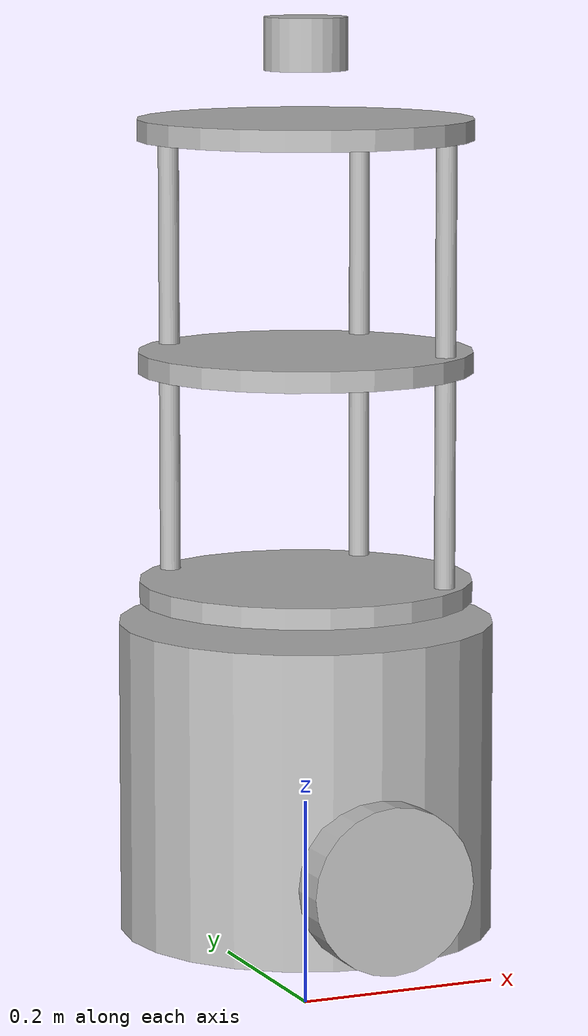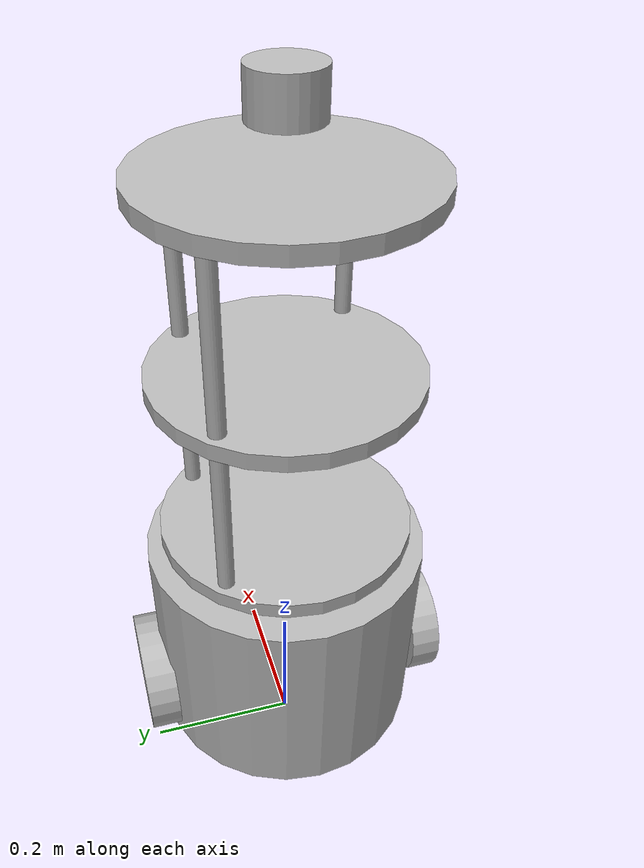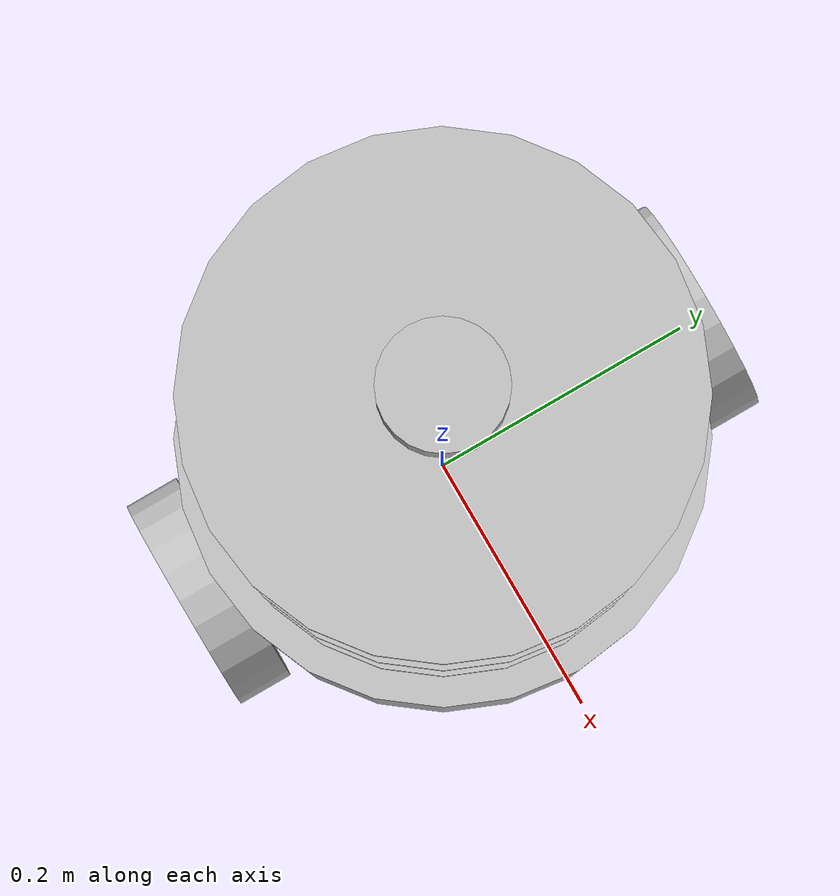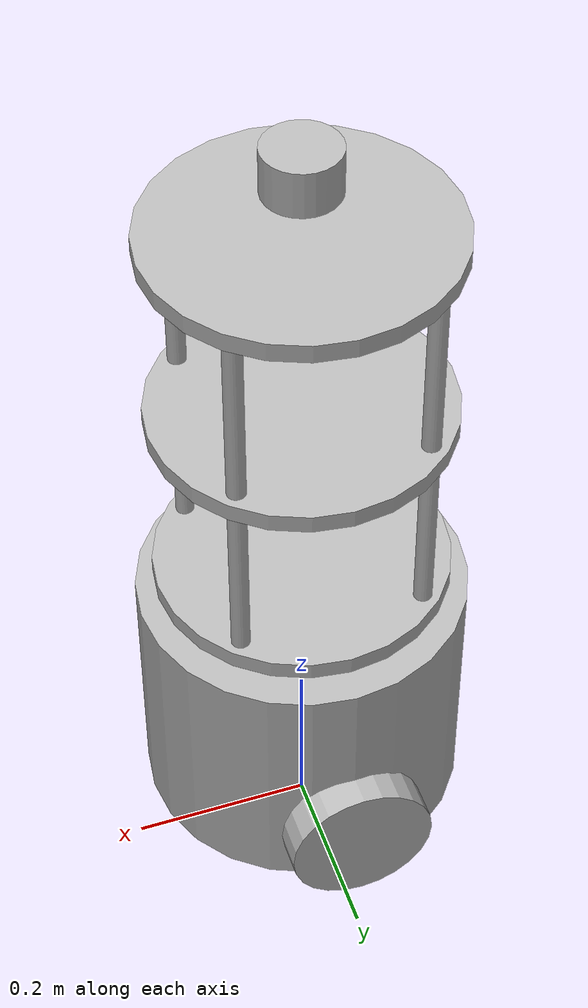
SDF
<sdf version='1.7'>
  <model name='restaurant_service_robot'>
  <plugin
  filename="gz-sim-diff-drive-system"
  name="gz::sim::systems::DiffDrive">

  <left_joint>left_wheel_joint</left_joint>
  <right_joint>right_wheel_joint</right_joint>

  <wheel_separation>0.38</wheel_separation>
  <wheel_radius>0.08</wheel_radius>

  <topic>cmd_vel</topic>

  <odom_topic>odom</odom_topic>

</plugin>
    <link name='base_footprint'>
      <inertial>
        <pose>-0.002927 0 0.226829 0 -0 0</pose>
        <mass>12.3</mass>
        <inertia>
          <ixx>0.255046</ixx>
          <ixy>0</ixy>
          <ixz>-0.00456585</ixz>
          <iyy>0.259261</iyy>
          <iyz>0</iyz>
          <izz>0.304315</izz>
        </inertia>
      </inertial>
      <collision name='base_footprint_fixed_joint_lump__base_link_collision'>
        <pose>0 0 0.23 0 -0 0</pose>
        <geometry>
          <cylinder>
            <length>0.3</length>
            <radius>0.18</radius>
          </cylinder>
        </geometry>
      </collision>
      <collision name='base_footprint_fixed_joint_lump__caster_wheel_collision_1'>
        <pose>-0.12 0 0.1 0 -0 0</pose>
        <geometry>
          <sphere>
            <radius>0.04</radius>
          </sphere>
        </geometry>
      </collision>
      <collision name='base_footprint_fixed_joint_lump__lower_tray_collision_2'>
        <pose>0 0 0.41 0 -0 0</pose>
        <geometry>
          <cylinder>
            <length>0.02</length>
            <radius>0.16</radius>
          </cylinder>
        </geometry>
      </collision>
      <collision name='base_footprint_fixed_joint_lump__middle_tray_collision_3'>
        <pose>0 0 0.63 0 -0 0</pose>
        <geometry>
          <cylinder>
            <length>0.02</length>
            <radius>0.16</radius>
          </cylinder>
        </geometry>
      </collision>
      <collision name='base_footprint_fixed_joint_lump__top_tray_collision_4'>
        <pose>0 0 0.85 0 -0 0</pose>
        <geometry>
          <cylinder>
            <length>0.02</length>
            <radius>0.16</radius>
          </cylinder>
        </geometry>
      </collision>
      <visual name='base_footprint_fixed_joint_lump__base_link_visual'>
        <pose>0 0 0.23 0 -0 0</pose>
        <geometry>
          <cylinder>
            <length>0.3</length>
            <radius>0.18</radius>
          </cylinder>
        </geometry>
      </visual>
      <visual name='base_footprint_fixed_joint_lump__caster_wheel_visual_1'>
        <pose>-0.12 0 0.1 0 -0 0</pose>
        <geometry>
          <sphere>
            <radius>0.04</radius>
          </sphere>
        </geometry>
      </visual>
      <visual name='base_footprint_fixed_joint_lump__lower_tray_visual_2'>
        <pose>0 0 0.41 0 -0 0</pose>
        <geometry>
          <cylinder>
            <length>0.02</length>
            <radius>0.16</radius>
          </cylinder>
        </geometry>
      </visual>
      <visual name='base_footprint_fixed_joint_lump__middle_tray_visual_3'>
        <pose>0 0 0.63 0 -0 0</pose>
        <geometry>
          <cylinder>
            <length>0.02</length>
            <radius>0.16</radius>
          </cylinder>
        </geometry>
      </visual>
      <visual name='base_footprint_fixed_joint_lump__top_tray_visual_4'>
        <pose>0 0 0.85 0 -0 0</pose>
        <geometry>
          <cylinder>
            <length>0.02</length>
            <radius>0.16</radius>
          </cylinder>
        </geometry>
      </visual>
      <visual name='base_footprint_fixed_joint_lump__lidar_link_visual_5'>
        <pose>0 0 0.93 0 -0 0</pose>
        <geometry>
          <cylinder>
            <length>0.05</length>
            <radius>0.04</radius>
          </cylinder>
        </geometry>
      </visual>
      <visual name='base_footprint_fixed_joint_lump__rod_1_visual_6'>
        <pose>0.1 0.1 0.62 0 -0 0</pose>
        <geometry>
          <cylinder>
            <length>0.44</length>
            <radius>0.01</radius>
          </cylinder>
        </geometry>
      </visual>
      <visual name='base_footprint_fixed_joint_lump__rod_2_visual_7'>
        <pose>-0.1 0.1 0.62 0 -0 0</pose>
        <geometry>
          <cylinder>
            <length>0.44</length>
            <radius>0.01</radius>
          </cylinder>
        </geometry>
      </visual>
      <visual name='base_footprint_fixed_joint_lump__rod_3_visual_8'>
        <pose>0.1 -0.1 0.62 0 -0 0</pose>
        <geometry>
          <cylinder>
            <length>0.44</length>
            <radius>0.01</radius>
          </cylinder>
        </geometry>
      </visual>
    </link>
    <joint name='left_wheel_joint' type='revolute'>
      <pose relative_to='base_footprint'>0 0.19 0.16 0 -0 0</pose>
      <parent>base_footprint</parent>
      <child>left_wheel</child>
      <axis>
        <xyz>0 1 0</xyz>
        <limit>
          <lower>-1e+16</lower>
          <upper>1e+16</upper>
        </limit>
        <dynamics>
          <spring_reference>0</spring_reference>
          <spring_stiffness>0</spring_stiffness>
        </dynamics>
      </axis>
    </joint>
    <link name='left_wheel'>
      <pose relative_to='left_wheel_joint'>0 0 0 0 -0 0</pose>
      <inertial>
        <pose>0 0 0 0 -0 0</pose>
        <mass>1</mass>
        <inertia>
          <ixx>0.001</ixx>
          <ixy>0</ixy>
          <ixz>0</ixz>
          <iyy>0.001</iyy>
          <iyz>0</iyz>
          <izz>0.001</izz>
        </inertia>
      </inertial>
      <collision name='left_wheel_collision'>
        <pose>0 0 0 1.5708 -0 0</pose>
        <geometry>
          <cylinder>
            <length>0.04</length>
            <radius>0.08</radius>
          </cylinder>
        </geometry>
      </collision>
      <visual name='left_wheel_visual'>
        <pose>0 0 0 1.5708 -0 0</pose>
        <geometry>
          <cylinder>
            <length>0.04</length>
            <radius>0.08</radius>
          </cylinder>
        </geometry>
      </visual>
    </link>
    <joint name='right_wheel_joint' type='revolute'>
      <pose relative_to='base_footprint'>0 -0.19 0.16 0 -0 0</pose>
      <parent>base_footprint</parent>
      <child>right_wheel</child>
      <axis>
        <xyz>0 1 0</xyz>
        <limit>
          <lower>-1e+16</lower>
          <upper>1e+16</upper>
        </limit>
        <dynamics>
          <spring_reference>0</spring_reference>
          <spring_stiffness>0</spring_stiffness>
        </dynamics>
      </axis>
    </joint>
    <link name='right_wheel'>
      <pose relative_to='right_wheel_joint'>0 0 0 0 -0 0</pose>
      <inertial>
        <pose>0 0 0 0 -0 0</pose>
        <mass>1</mass>
        <inertia>
          <ixx>0.001</ixx>
          <ixy>0</ixy>
          <ixz>0</ixz>
          <iyy>0.001</iyy>
          <iyz>0</iyz>
          <izz>0.001</izz>
        </inertia>
      </inertial>
      <collision name='right_wheel_collision'>
        <pose>0 0 0 1.5708 -0 0</pose>
        <geometry>
          <cylinder>
            <length>0.04</length>
            <radius>0.08</radius>
          </cylinder>
        </geometry>
      </collision>
      <visual name='right_wheel_visual'>
        <pose>0 0 0 1.5708 -0 0</pose>
        <geometry>
          <cylinder>
            <length>0.04</length>
            <radius>0.08</radius>
          </cylinder>
        </geometry>
      </visual>
    </link>
    <static>0</static>
    <plugin name='gz::sim::systems::DiffDrive' filename='gz-sim-diff-drive-system'>
      <left_joint>left_wheel_joint</left_joint>
      <right_joint>right_wheel_joint</right_joint>
      <wheel_separation>0.38</wheel_separation>
      <wheel_radius>0.08</wheel_radius>
      <topic>cmd_vel</topic>
      <odom_topic>odom</odom_topic>
      <frame_id>odom</frame_id>
      <child_frame_id>base_footprint</child_frame_id>
    </plugin>
  </model>
</sdf>
